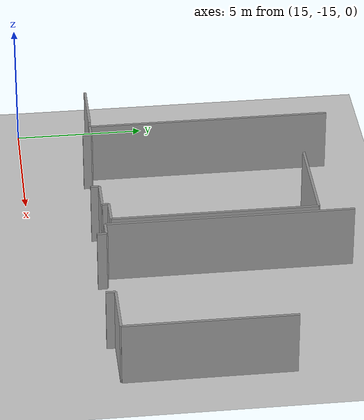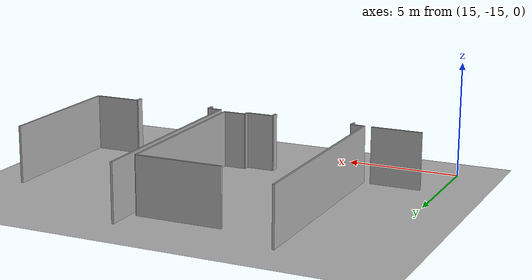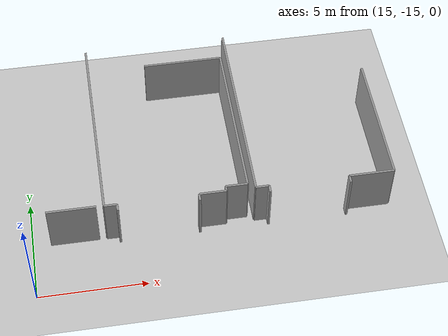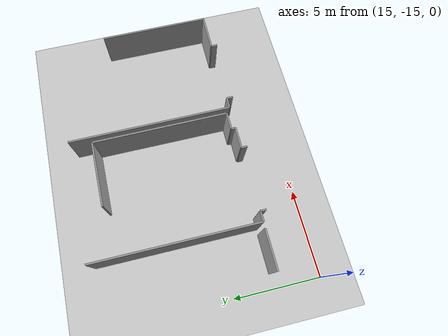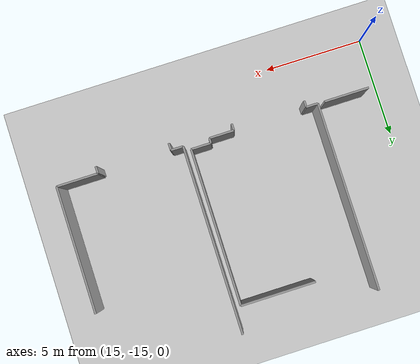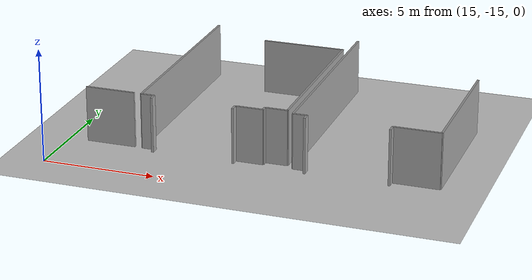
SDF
<sdf version="1.6">
 <world name="default">
  <model name="ground_plane">
   <static>1</static>
   <link name="link">
    <collision name="collision">
     <geometry><plane><normal>0 0 1</normal><size>100 100</size></plane></geometry>
     <surface><friction><ode><mu>100</mu><mu2>50</mu2></ode></friction></surface>
    </collision>
    <visual name="visual">
     <cast_shadows>0</cast_shadows>
     <geometry><plane><normal>0 0 1</normal><size>100 100</size></plane></geometry>
     <material>
      <script><uri>file://media/materials/scripts/gazebo.material</uri><name>Gazebo/Grey</name></script>
     </material>
    </visual>
   </link>
  </model>
  <model name="50045369">
   <static>1</static>
   <link name="Wall_156">
    <collision name="Wall_156_Collision">
     <geometry><box><size>2.22744749134 0.1 2.5</size></box></geometry>
     <pose>1.11372374567 0 1.25 0 0 0</pose>
    </collision>
    <visual name="Wall_156_Visual">
     <pose>1.11372374567 0 1.25 0 0 0</pose>
     <geometry><box><size>2.22744749134 0.1 2.5</size></box></geometry>
     <material>
      <script><uri>file://media/materials/scripts/gazebo.material</uri><name>Gazebo/Grey</name></script>
      <ambient>1 1 1 1</ambient>
     </material>
    </visual>
    <pose>64.0029233262 -34.1833433955 0 0 0 3.14159265359</pose>
   </link>
   <link name="Wall_160">
    <collision name="Wall_160_Collision">
     <geometry><box><size>9.39175749102 0.1 2.5</size></box></geometry>
     <pose>4.69587874551 0 1.25 0 0 0</pose>
    </collision>
    <visual name="Wall_160_Visual">
     <pose>4.69587874551 0 1.25 0 0 0</pose>
     <geometry><box><size>9.39175749102 0.1 2.5</size></box></geometry>
     <material>
      <script><uri>file://media/materials/scripts/gazebo.material</uri><name>Gazebo/Grey</name></script>
      <ambient>1 1 1 1</ambient>
     </material>
    </visual>
    <pose>64.3406310572 -34.2002478472 0 0 0 1.57079632679</pose>
   </link>
   <link name="Wall_166">
    <collision name="Wall_166_Collision">
     <geometry><box><size>3.73651933526 0.1 2.5</size></box></geometry>
     <pose>1.86825966763 0 1.25 0 0 0</pose>
    </collision>
    <visual name="Wall_166_Visual">
     <pose>1.86825966763 0 1.25 0 0 0</pose>
     <geometry><box><size>3.73651933526 0.1 2.5</size></box></geometry>
     <material>
      <script><uri>file://media/materials/scripts/gazebo.material</uri><name>Gazebo/Grey</name></script>
      <ambient>1 1 1 1</ambient>
     </material>
    </visual>
    <pose>67.086015697 -26.1175050046 0 0 0 0.0</pose>
   </link>
   <link name="Wall_167">
    <collision name="Wall_167_Collision">
     <geometry><box><size>7.81913507674 0.1 2.5</size></box></geometry>
     <pose>3.90956753837 0 1.25 0 0 0</pose>
    </collision>
    <visual name="Wall_167_Visual">
     <pose>3.90956753837 0 1.25 0 0 0</pose>
     <geometry><box><size>7.81913507674 0.1 2.5</size></box></geometry>
     <material>
      <script><uri>file://media/materials/scripts/gazebo.material</uri><name>Gazebo/Grey</name></script>
      <ambient>1 1 1 1</ambient>
     </material>
    </visual>
    <pose>70.8225350323 -26.1175050046 0 0 0 -1.57079632679</pose>
   </link>
   <link name="Wall_168">
    <collision name="Wall_168_Collision">
     <geometry><box><size>0.99558323536 0.1 2.5</size></box></geometry>
     <pose>0.49779161768 0 1.25 0 0 0</pose>
    </collision>
    <visual name="Wall_168_Visual">
     <pose>0.49779161768 0 1.25 0 0 0</pose>
     <geometry><box><size>0.99558323536 0.1 2.5</size></box></geometry>
     <material>
      <script><uri>file://media/materials/scripts/gazebo.material</uri><name>Gazebo/Grey</name></script>
      <ambient>1 1 1 1</ambient>
     </material>
    </visual>
    <pose>70.8225350323 -33.9366400813 0 0 0 3.14159265359</pose>
   </link>
   <link name="Wall_169">
    <collision name="Wall_169_Collision">
     <geometry><box><size>0.247084617584 0.1 2.5</size></box></geometry>
     <pose>0.123542308792 0 1.25 0 0 0</pose>
    </collision>
    <visual name="Wall_169_Visual">
     <pose>0.123542308792 0 1.25 0 0 0</pose>
     <geometry><box><size>0.247084617584 0.1 2.5</size></box></geometry>
     <material>
      <script><uri>file://media/materials/scripts/gazebo.material</uri><name>Gazebo/Grey</name></script>
      <ambient>1 1 1 1</ambient>
     </material>
    </visual>
    <pose>69.8269517969 -33.9366400813 0 0 0 -1.57079632679</pose>
   </link>
   <link name="Wall_170">
    <collision name="Wall_170_Collision">
     <geometry><box><size>1.23542308792 0.1 2.5</size></box></geometry>
     <pose>0.617711543961 0 1.25 0 0 0</pose>
    </collision>
    <visual name="Wall_170_Visual">
     <pose>0.617711543961 0 1.25 0 0 0</pose>
     <geometry><box><size>1.23542308792 0.1 2.5</size></box></geometry>
     <material>
      <script><uri>file://media/materials/scripts/gazebo.material</uri><name>Gazebo/Grey</name></script>
      <ambient>1 1 1 1</ambient>
     </material>
    </visual>
    <pose>69.8269517969 -34.1837246989 0 0 0 3.14159265359</pose>
   </link>
   <link name="Wall_171">
    <collision name="Wall_171_Collision">
     <geometry><box><size>0.34164786629 0.1 2.5</size></box></geometry>
     <pose>0.170823933145 0 1.25 0 0 0</pose>
    </collision>
    <visual name="Wall_171_Visual">
     <pose>0.170823933145 0 1.25 0 0 0</pose>
     <geometry><box><size>0.34164786629 0.1 2.5</size></box></geometry>
     <material>
      <script><uri>file://media/materials/scripts/gazebo.material</uri><name>Gazebo/Grey</name></script>
      <ambient>1 1 1 1</ambient>
     </material>
    </visual>
    <pose>68.591528709 -34.1837246989 0 0 0 -1.57079632679</pose>
   </link>
   <link name="Wall_172">
    <collision name="Wall_172_Collision">
     <geometry><box><size>0.322963998602 0.1 2.5</size></box></geometry>
     <pose>0.161481999301 0 1.25 0 0 0</pose>
    </collision>
    <visual name="Wall_172_Visual">
     <pose>0.161481999301 0 1.25 0 0 0</pose>
     <geometry><box><size>0.322963998602 0.1 2.5</size></box></geometry>
     <material>
      <script><uri>file://media/materials/scripts/gazebo.material</uri><name>Gazebo/Grey</name></script>
      <ambient>1 1 1 1</ambient>
     </material>
    </visual>
    <pose>64.9291093388 -34.5253725652 0 0 0 1.57079632679</pose>
   </link>
   <link name="Wall_173">
    <collision name="Wall_173_Collision">
     <geometry><box><size>0.588482248343 0.1 2.5</size></box></geometry>
     <pose>0.294241124171 0 1.25 0 0 0</pose>
    </collision>
    <visual name="Wall_173_Visual">
     <pose>0.294241124171 0 1.25 0 0 0</pose>
     <geometry><box><size>0.588482248343 0.1 2.5</size></box></geometry>
     <material>
      <script><uri>file://media/materials/scripts/gazebo.material</uri><name>Gazebo/Grey</name></script>
      <ambient>1 1 1 1</ambient>
     </material>
    </visual>
    <pose>64.9291093388 -34.2024085666 0 0 0 3.13792096383</pose>
   </link>
   <link name="Wall_174">
    <collision name="Wall_174_Collision">
     <geometry><box><size>9.39023227733 0.1 2.5</size></box></geometry>
     <pose>4.69511613867 0 1.25 0 0 0</pose>
    </collision>
    <visual name="Wall_174_Visual">
     <pose>4.69511613867 0 1.25 0 0 0</pose>
     <geometry><box><size>9.39023227733 0.1 2.5</size></box></geometry>
     <material>
      <script><uri>file://media/materials/scripts/gazebo.material</uri><name>Gazebo/Grey</name></script>
      <ambient>1 1 1 1</ambient>
     </material>
    </visual>
    <pose>71.1470242445 -34.1919862731 0 0 0 1.57079632679</pose>
   </link>
   <link name="Wall_186">
    <collision name="Wall_186_Collision">
     <geometry><box><size>6.34298242827 0.1 2.5</size></box></geometry>
     <pose>3.17149121413 0 1.25 0 0 0</pose>
    </collision>
    <visual name="Wall_186_Visual">
     <pose>3.17149121413 0 1.25 0 0 0</pose>
     <geometry><box><size>6.34298242827 0.1 2.5</size></box></geometry>
     <material>
      <script><uri>file://media/materials/scripts/gazebo.material</uri><name>Gazebo/Grey</name></script>
      <ambient>1 1 1 1</ambient>
     </material>
    </visual>
    <pose>77.4957262241 -27.8426487878 0 0 0 -1.57079632679</pose>
   </link>
   <link name="Wall_187">
    <collision name="Wall_187_Collision">
     <geometry><box><size>2.07060468368 0.1 2.5</size></box></geometry>
     <pose>1.03530234184 0 1.25 0 0 0</pose>
    </collision>
    <visual name="Wall_187_Visual">
     <pose>1.03530234184 0 1.25 0 0 0</pose>
     <geometry><box><size>2.07060468368 0.1 2.5</size></box></geometry>
     <material>
      <script><uri>file://media/materials/scripts/gazebo.material</uri><name>Gazebo/Grey</name></script>
      <ambient>1 1 1 1</ambient>
     </material>
    </visual>
    <pose>77.4957262241 -34.185631216 0 0 0 3.14159265359</pose>
   </link>
   <link name="Wall_188">
    <collision name="Wall_188_Collision">
     <geometry><box><size>0.360204632837 0.1 2.5</size></box></geometry>
     <pose>0.180102316418 0 1.25 0 0 0</pose>
    </collision>
    <visual name="Wall_188_Visual">
     <pose>0.180102316418 0 1.25 0 0 0</pose>
     <geometry><box><size>0.360204632837 0.1 2.5</size></box></geometry>
     <material>
      <script><uri>file://media/materials/scripts/gazebo.material</uri><name>Gazebo/Grey</name></script>
      <ambient>1 1 1 1</ambient>
     </material>
    </visual>
    <pose>75.4251215405 -34.185631216 0 0 0 -1.57079632679</pose>
   </link>
   <link name="Wall_189">
    <collision name="Wall_189_Collision">
     <geometry><box><size>0.355247688348 0.1 2.5</size></box></geometry>
     <pose>0.177623844174 0 1.25 0 0 0</pose>
    </collision>
    <visual name="Wall_189_Visual">
     <pose>0.177623844174 0 1.25 0 0 0</pose>
     <geometry><box><size>0.355247688348 0.1 2.5</size></box></geometry>
     <material>
      <script><uri>file://media/materials/scripts/gazebo.material</uri><name>Gazebo/Grey</name></script>
      <ambient>1 1 1 1</ambient>
     </material>
    </visual>
    <pose>71.7548218995 -34.5458358489 0 0 0 1.57079632679</pose>
   </link>
   <link name="Wall_190">
    <collision name="Wall_190_Collision">
     <geometry><box><size>0.607799263016 0.1 2.5</size></box></geometry>
     <pose>0.303899631508 0 1.25 0 0 0</pose>
    </collision>
    <visual name="Wall_190_Visual">
     <pose>0.303899631508 0 1.25 0 0 0</pose>
     <geometry><box><size>0.607799263016 0.1 2.5</size></box></geometry>
     <material>
      <script><uri>file://media/materials/scripts/gazebo.material</uri><name>Gazebo/Grey</name></script>
      <ambient>1 1 1 1</ambient>
     </material>
    </visual>
    <pose>71.7548218995 -34.1905881605 0 0 0 -3.13929236488</pose>
   </link>
   <pose>-45.95 21.8978774109 0 0 0 0</pose>
  </model>
 </world>
</sdf>
